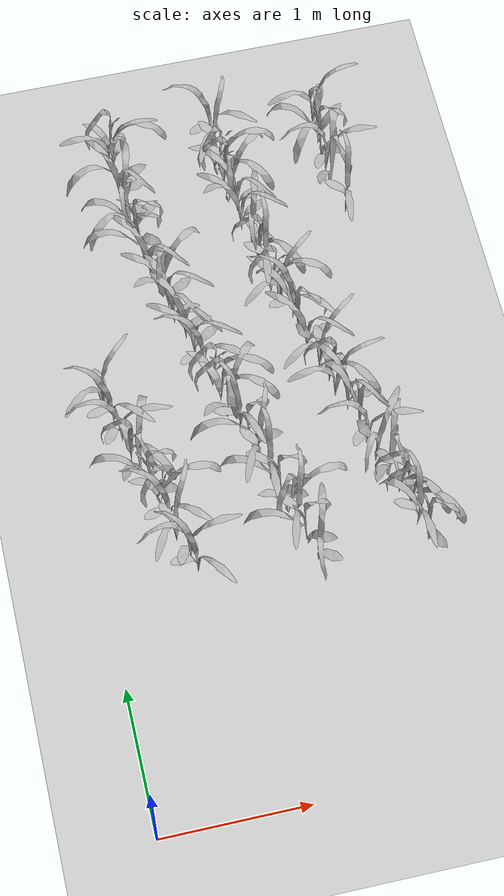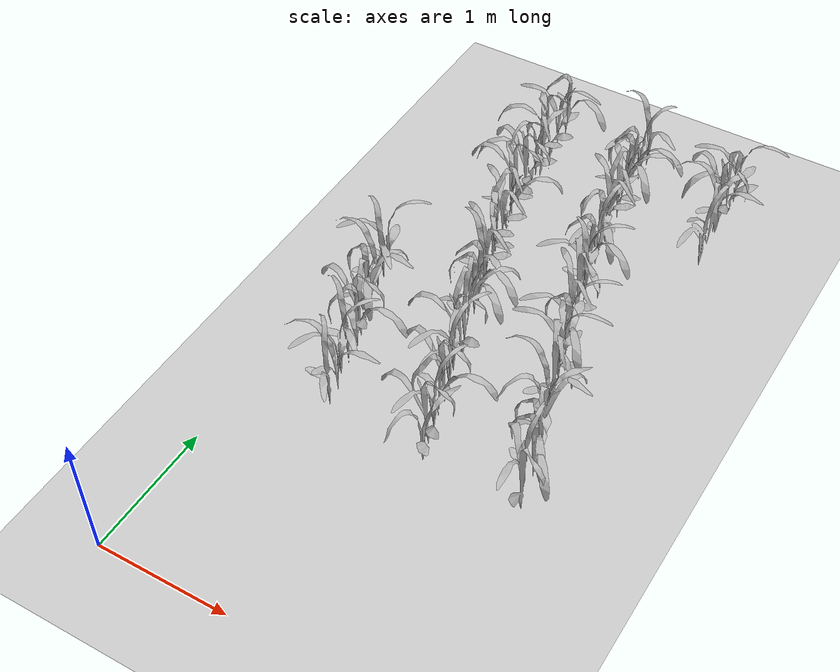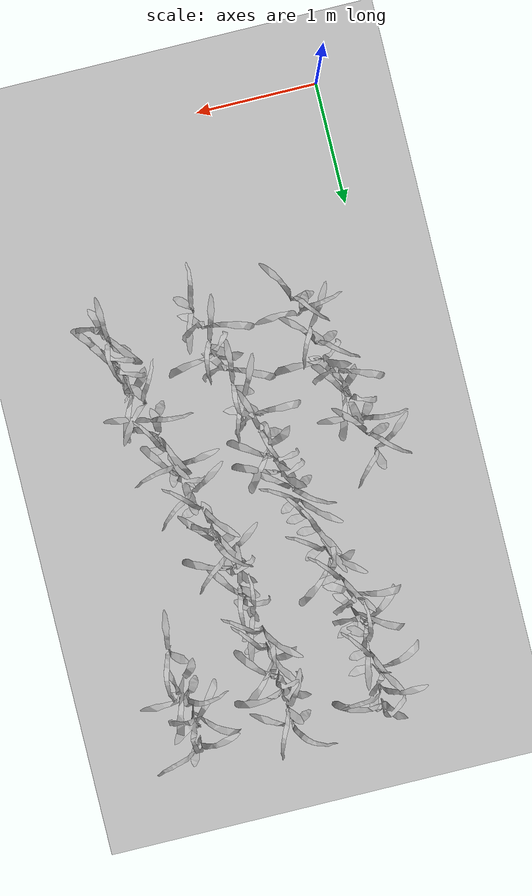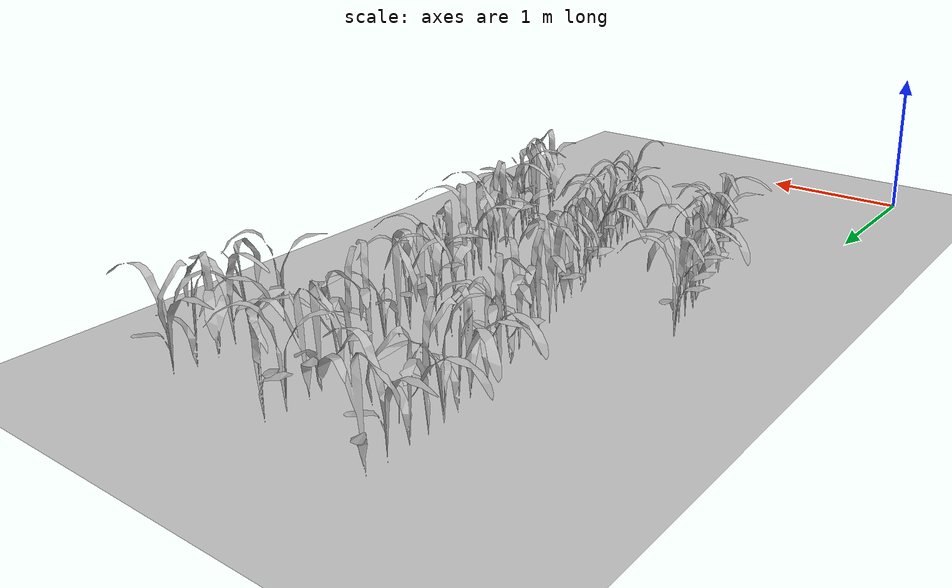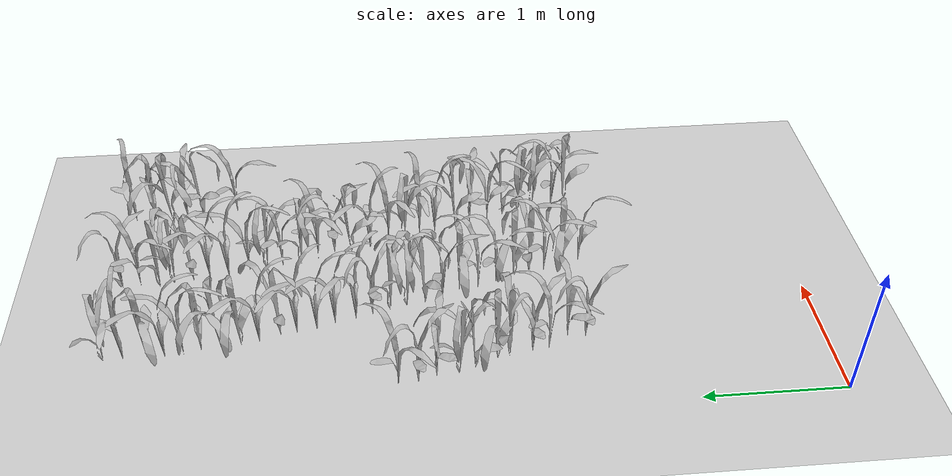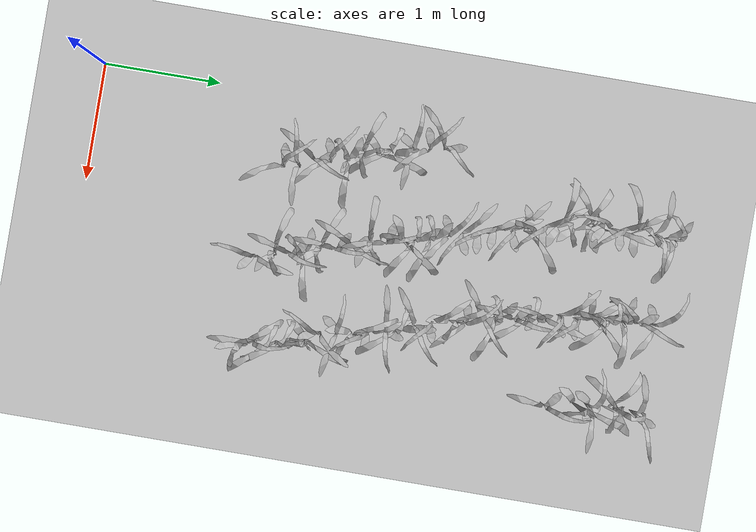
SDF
<sdf version="1.7">
 <world name="default">
  <model name="maize_02_0451">
   <pose>0.620495 1.67013 -1e-06 -8.9e-05 6e-06 1.20373</pose>
   <link name="maize_02_link">
    <inertial>
     <pose>0 0 0.01 0 -0 0</pose>
     <mass>0.3</mass>
     <inertia>
      <ixx>0.00334167</ixx>
      <ixy>0</ixy>
      <ixz>0</ixz>
      <iyy>0.00334167</iyy>
      <iyz>0</iyz>
      <izz>1.66667e-05</izz>
     </inertia>
     <pose>0 0 0.1 0 -0 0</pose>
    </inertial>
    <visual name="visual">
     <geometry>
      <mesh><uri>model://maize_02/meshes/maize_02.dae</uri><scale>0.683166 0.683166 0.683166</scale></mesh>
     </geometry>
    </visual>
   </link>
   <static>0</static>
  </model>
  <model name="maize_02_0452">
   <pose>0.599011 1.80228 -0 5e-06 2.8e-05 2.25262</pose>
   <link name="maize_02_link">
    <inertial>
     <pose>0 0 0.01 0 -0 0</pose>
     <mass>0.3</mass>
     <inertia>
      <ixx>0.00334167</ixx>
      <ixy>0</ixy>
      <ixz>0</ixz>
      <iyy>0.00334167</iyy>
      <iyz>0</iyz>
      <izz>1.66667e-05</izz>
     </inertia>
     <pose>0 0 0.1 0 -0 0</pose>
    </inertial>
    <visual name="visual">
     <geometry>
      <mesh><uri>model://maize_02/meshes/maize_02.dae</uri><scale>0.683166 0.683166 0.683166</scale></mesh>
     </geometry>
    </visual>
   </link>
   <static>0</static>
  </model>
  <model name="maize_02_0453">
   <pose>0.530968 1.9393 -0 2.8e-05 -5e-06 0.083219</pose>
   <link name="maize_02_link">
    <inertial>
     <pose>0 0 0.01 0 -0 0</pose>
     <mass>0.3</mass>
     <inertia>
      <ixx>0.00334167</ixx>
      <ixy>0</ixy>
      <ixz>0</ixz>
      <iyy>0.00334167</iyy>
      <iyz>0</iyz>
      <izz>1.66667e-05</izz>
     </inertia>
     <pose>0 0 0.1 0 -0 0</pose>
    </inertial>
    <visual name="visual">
     <geometry>
      <mesh><uri>model://maize_02/meshes/maize_02.dae</uri><scale>0.683166 0.683166 0.683166</scale></mesh>
     </geometry>
    </visual>
   </link>
   <static>0</static>
  </model>
  <model name="maize_02_0454">
   <pose>0.514812 2.0549 -0 6e-06 -4.8e-05 1.43302</pose>
   <link name="maize_02_link">
    <inertial>
     <pose>0 0 0.01 0 -0 0</pose>
     <mass>0.3</mass>
     <inertia>
      <ixx>0.00334167</ixx>
      <ixy>0</ixy>
      <ixz>0</ixz>
      <iyy>0.00334167</iyy>
      <iyz>0</iyz>
      <izz>1.66667e-05</izz>
     </inertia>
     <pose>0 0 0.1 0 -0 0</pose>
    </inertial>
    <visual name="visual">
     <geometry>
      <mesh><uri>model://maize_02/meshes/maize_02.dae</uri><scale>0.683166 0.683166 0.683166</scale></mesh>
     </geometry>
    </visual>
   </link>
   <static>0</static>
  </model>
  <model name="maize_01_0455">
   <pose>0.481697 2.21434 -0 -2.8e-05 -5e-06 0.814512</pose>
   <link name="maize_01_link">
    <inertial>
     <pose>0 0 0.01 0 -0 0</pose>
     <mass>0.3</mass>
     <inertia>
      <ixx>0.00334167</ixx>
      <ixy>0</ixy>
      <ixz>0</ixz>
      <iyy>0.00334167</iyy>
      <iyz>0</iyz>
      <izz>1.66667e-05</izz>
     </inertia>
     <pose>0 0 0.1 0 -0 0</pose>
    </inertial>
    <visual name="visual">
     <geometry>
      <mesh><uri>model://maize_01/meshes/maize_01.dae</uri><scale>0.683166 0.683166 0.683166</scale></mesh>
     </geometry>
    </visual>
   </link>
   <static>0</static>
  </model>
  <model name="maize_01_0456">
   <pose>0.457472 2.30804 1e-06 -3e-06 0.000156 -2.69508</pose>
   <link name="maize_01_link">
    <inertial>
     <pose>0 0 0.01 0 -0 0</pose>
     <mass>0.3</mass>
     <inertia>
      <ixx>0.00334167</ixx>
      <ixy>0</ixy>
      <ixz>0</ixz>
      <iyy>0.00334167</iyy>
      <iyz>0</iyz>
      <izz>1.66667e-05</izz>
     </inertia>
     <pose>0 0 0.1 0 -0 0</pose>
    </inertial>
    <visual name="visual">
     <geometry>
      <mesh><uri>model://maize_01/meshes/maize_01.dae</uri><scale>0.683166 0.683166 0.683166</scale></mesh>
     </geometry>
    </visual>
   </link>
   <static>0</static>
  </model>
  <model name="maize_01_0457">
   <pose>0.396834 2.46275 -1e-06 -6e-06 -8.9e-05 2.08866</pose>
   <link name="maize_01_link">
    <inertial>
     <pose>0 0 0.01 0 -0 0</pose>
     <mass>0.3</mass>
     <inertia>
      <ixx>0.00334167</ixx>
      <ixy>0</ixy>
      <ixz>0</ixz>
      <iyy>0.00334167</iyy>
      <iyz>0</iyz>
      <izz>1.66667e-05</izz>
     </inertia>
     <pose>0 0 0.1 0 -0 0</pose>
    </inertial>
    <visual name="visual">
     <geometry>
      <mesh><uri>model://maize_01/meshes/maize_01.dae</uri><scale>0.683166 0.683166 0.683166</scale></mesh>
     </geometry>
    </visual>
   </link>
   <static>0</static>
  </model>
  <model name="maize_01_0458">
   <pose>0.350859 2.57263 1e-06 -0.000156 -3e-06 -0.164295</pose>
   <link name="maize_01_link">
    <inertial>
     <pose>0 0 0.01 0 -0 0</pose>
     <mass>0.3</mass>
     <inertia>
      <ixx>0.00334167</ixx>
      <ixy>0</ixy>
      <ixz>0</ixz>
      <iyy>0.00334167</iyy>
      <iyz>0</iyz>
      <izz>1.66667e-05</izz>
     </inertia>
     <pose>0 0 0.1 0 -0 0</pose>
    </inertial>
    <visual name="visual">
     <geometry>
      <mesh><uri>model://maize_01/meshes/maize_01.dae</uri><scale>0.683166 0.683166 0.683166</scale></mesh>
     </geometry>
    </visual>
   </link>
   <static>0</static>
  </model>
  <model name="maize_02_0459">
   <pose>0.322986 2.72789 -0 -2.8e-05 5e-06 2.05555</pose>
   <link name="maize_02_link">
    <inertial>
     <pose>0 0 0.01 0 -0 0</pose>
     <mass>0.3</mass>
     <inertia>
      <ixx>0.00334167</ixx>
      <ixy>0</ixy>
      <ixz>0</ixz>
      <iyy>0.00334167</iyy>
      <iyz>0</iyz>
      <izz>1.66667e-05</izz>
     </inertia>
     <pose>0 0 0.1 0 -0 0</pose>
    </inertial>
    <visual name="visual">
     <geometry>
      <mesh><uri>model://maize_02/meshes/maize_02.dae</uri><scale>0.683166 0.683166 0.683166</scale></mesh>
     </geometry>
    </visual>
   </link>
   <static>0</static>
  </model>
  <model name="maize_02_0460">
   <pose>0.290835 2.85347 -1e-06 8.3e-05 6e-06 1.38598</pose>
   <link name="maize_02_link">
    <inertial>
     <pose>0 0 0.01 0 -0 0</pose>
     <mass>0.3</mass>
     <inertia>
      <ixx>0.00334167</ixx>
      <ixy>0</ixy>
      <ixz>0</ixz>
      <iyy>0.00334167</iyy>
      <iyz>0</iyz>
      <izz>1.66667e-05</izz>
     </inertia>
     <pose>0 0 0.1 0 -0 0</pose>
    </inertial>
    <visual name="visual">
     <geometry>
      <mesh><uri>model://maize_02/meshes/maize_02.dae</uri><scale>0.683166 0.683166 0.683166</scale></mesh>
     </geometry>
    </visual>
   </link>
   <static>0</static>
  </model>
  <model name="maize_02_0461">
   <pose>0.243371 2.98995 1e-06 -0.000156 -3e-06 -0.250146</pose>
   <link name="maize_02_link">
    <inertial>
     <pose>0 0 0.01 0 -0 0</pose>
     <mass>0.3</mass>
     <inertia>
      <ixx>0.00334167</ixx>
      <ixy>0</ixy>
      <ixz>0</ixz>
      <iyy>0.00334167</iyy>
      <iyz>0</iyz>
      <izz>1.66667e-05</izz>
     </inertia>
     <pose>0 0 0.1 0 -0 0</pose>
    </inertial>
    <visual name="visual">
     <geometry>
      <mesh><uri>model://maize_02/meshes/maize_02.dae</uri><scale>0.683166 0.683166 0.683166</scale></mesh>
     </geometry>
    </visual>
   </link>
   <static>0</static>
  </model>
  <model name="maize_02_0526">
   <pose>1.41445 1.58787 -0 2.8e-05 -5e-06 -2.77338</pose>
   <link name="maize_02_link">
    <inertial>
     <pose>0 0 0.01 0 -0 0</pose>
     <mass>0.3</mass>
     <inertia>
      <ixx>0.00334167</ixx>
      <ixy>0</ixy>
      <ixz>0</ixz>
      <iyy>0.00334167</iyy>
      <iyz>0</iyz>
      <izz>1.66667e-05</izz>
     </inertia>
     <pose>0 0 0.1 0 -0 0</pose>
    </inertial>
    <visual name="visual">
     <geometry>
      <mesh><uri>model://maize_02/meshes/maize_02.dae</uri><scale>0.683166 0.683166 0.683166</scale></mesh>
     </geometry>
    </visual>
   </link>
   <static>0</static>
  </model>
  <model name="maize_01_0527">
   <pose>1.37013 1.72844 -0 2.8e-05 -5e-06 -2.59882</pose>
   <link name="maize_01_link">
    <inertial>
     <pose>0 0 0.01 0 -0 0</pose>
     <mass>0.3</mass>
     <inertia>
      <ixx>0.00334167</ixx>
      <ixy>0</ixy>
      <ixz>0</ixz>
      <iyy>0.00334167</iyy>
      <iyz>0</iyz>
      <izz>1.66667e-05</izz>
     </inertia>
     <pose>0 0 0.1 0 -0 0</pose>
    </inertial>
    <visual name="visual">
     <geometry>
      <mesh><uri>model://maize_01/meshes/maize_01.dae</uri><scale>0.683166 0.683166 0.683166</scale></mesh>
     </geometry>
    </visual>
   </link>
   <static>0</static>
  </model>
  <model name="maize_02_0528">
   <pose>1.3337 1.85726 -0 5e-06 -2.8e-05 0.335687</pose>
   <link name="maize_02_link">
    <inertial>
     <pose>0 0 0.01 0 -0 0</pose>
     <mass>0.3</mass>
     <inertia>
      <ixx>0.00334167</ixx>
      <ixy>0</ixy>
      <ixz>0</ixz>
      <iyy>0.00334167</iyy>
      <iyz>0</iyz>
      <izz>1.66667e-05</izz>
     </inertia>
     <pose>0 0 0.1 0 -0 0</pose>
    </inertial>
    <visual name="visual">
     <geometry>
      <mesh><uri>model://maize_02/meshes/maize_02.dae</uri><scale>0.683166 0.683166 0.683166</scale></mesh>
     </geometry>
    </visual>
   </link>
   <static>0</static>
  </model>
  <model name="maize_01_0529">
   <pose>1.30102 1.96787 1e-06 3e-06 -0.000156 0.990591</pose>
   <link name="maize_01_link">
    <inertial>
     <pose>0 0 0.01 0 -0 0</pose>
     <mass>0.3</mass>
     <inertia>
      <ixx>0.00334167</ixx>
      <ixy>0</ixy>
      <ixz>0</ixz>
      <iyy>0.00334167</iyy>
      <iyz>0</iyz>
      <izz>1.66667e-05</izz>
     </inertia>
     <pose>0 0 0.1 0 -0 0</pose>
    </inertial>
    <visual name="visual">
     <geometry>
      <mesh><uri>model://maize_01/meshes/maize_01.dae</uri><scale>0.683166 0.683166 0.683166</scale></mesh>
     </geometry>
    </visual>
   </link>
   <static>0</static>
  </model>
  <model name="maize_01_0530">
   <pose>1.28025 2.08954 -0.000245 1.2e-05 -1.4e-05 -2.76819</pose>
   <link name="maize_01_link">
    <inertial>
     <pose>0 0 0.01 0 -0 0</pose>
     <mass>0.3</mass>
     <inertia>
      <ixx>0.00334167</ixx>
      <ixy>0</ixy>
      <ixz>0</ixz>
      <iyy>0.00334167</iyy>
      <iyz>0</iyz>
      <izz>1.66667e-05</izz>
     </inertia>
     <pose>0 0 0.1 0 -0 0</pose>
    </inertial>
    <visual name="visual">
     <geometry>
      <mesh><uri>model://maize_01/meshes/maize_01.dae</uri><scale>0.683166 0.683166 0.683166</scale></mesh>
     </geometry>
    </visual>
   </link>
   <static>0</static>
  </model>
  <model name="maize_02_0531">
   <pose>1.23136 2.22304 1e-06 -3e-06 0.000156 0.561517</pose>
   <link name="maize_02_link">
    <inertial>
     <pose>0 0 0.01 0 -0 0</pose>
     <mass>0.3</mass>
     <inertia>
      <ixx>0.00334167</ixx>
      <ixy>0</ixy>
      <ixz>0</ixz>
      <iyy>0.00334167</iyy>
      <iyz>0</iyz>
      <izz>1.66667e-05</izz>
     </inertia>
     <pose>0 0 0.1 0 -0 0</pose>
    </inertial>
    <visual name="visual">
     <geometry>
      <mesh><uri>model://maize_02/meshes/maize_02.dae</uri><scale>0.683166 0.683166 0.683166</scale></mesh>
     </geometry>
    </visual>
   </link>
   <static>0</static>
  </model>
  <model name="maize_02_0532">
   <pose>1.18179 2.36155 1e-06 -0.000156 3e-06 0.184235</pose>
   <link name="maize_02_link">
    <inertial>
     <pose>0 0 0.01 0 -0 0</pose>
     <mass>0.3</mass>
     <inertia>
      <ixx>0.00334167</ixx>
      <ixy>0</ixy>
      <ixz>0</ixz>
      <iyy>0.00334167</iyy>
      <iyz>0</iyz>
      <izz>1.66667e-05</izz>
     </inertia>
     <pose>0 0 0.1 0 -0 0</pose>
    </inertial>
    <visual name="visual">
     <geometry>
      <mesh><uri>model://maize_02/meshes/maize_02.dae</uri><scale>0.683166 0.683166 0.683166</scale></mesh>
     </geometry>
    </visual>
   </link>
   <static>0</static>
  </model>
  <model name="maize_01_0533">
   <pose>1.16922 2.50072 1e-06 -3e-06 -0.000156 -2.34055</pose>
   <link name="maize_01_link">
    <inertial>
     <pose>0 0 0.01 0 -0 0</pose>
     <mass>0.3</mass>
     <inertia>
      <ixx>0.00334167</ixx>
      <ixy>0</ixy>
      <ixz>0</ixz>
      <iyy>0.00334167</iyy>
      <iyz>0</iyz>
      <izz>1.66667e-05</izz>
     </inertia>
     <pose>0 0 0.1 0 -0 0</pose>
    </inertial>
    <visual name="visual">
     <geometry>
      <mesh><uri>model://maize_01/meshes/maize_01.dae</uri><scale>0.683166 0.683166 0.683166</scale></mesh>
     </geometry>
    </visual>
   </link>
   <static>0</static>
  </model>
  <model name="maize_02_0534">
   <pose>1.11497 2.62585 -0.000245 1.2e-05 -1.4e-05 0.898897</pose>
   <link name="maize_02_link">
    <inertial>
     <pose>0 0 0.01 0 -0 0</pose>
     <mass>0.3</mass>
     <inertia>
      <ixx>0.00334167</ixx>
      <ixy>0</ixy>
      <ixz>0</ixz>
      <iyy>0.00334167</iyy>
      <iyz>0</iyz>
      <izz>1.66667e-05</izz>
     </inertia>
     <pose>0 0 0.1 0 -0 0</pose>
    </inertial>
    <visual name="visual">
     <geometry>
      <mesh><uri>model://maize_02/meshes/maize_02.dae</uri><scale>0.683166 0.683166 0.683166</scale></mesh>
     </geometry>
    </visual>
   </link>
   <static>0</static>
  </model>
  <model name="maize_01_0535">
   <pose>1.05888 2.75544 -0 2.8e-05 5e-06 1.72201</pose>
   <link name="maize_01_link">
    <inertial>
     <pose>0 0 0.01 0 -0 0</pose>
     <mass>0.3</mass>
     <inertia>
      <ixx>0.00334167</ixx>
      <ixy>0</ixy>
      <ixz>0</ixz>
      <iyy>0.00334167</iyy>
      <iyz>0</iyz>
      <izz>1.66667e-05</izz>
     </inertia>
     <pose>0 0 0.1 0 -0 0</pose>
    </inertial>
    <visual name="visual">
     <geometry>
      <mesh><uri>model://maize_01/meshes/maize_01.dae</uri><scale>0.683166 0.683166 0.683166</scale></mesh>
     </geometry>
    </visual>
   </link>
   <static>0</static>
  </model>
  <model name="maize_01_0536">
   <pose>1.03912 2.88571 -0 -5e-06 -2.8e-05 0.213603</pose>
   <link name="maize_01_link">
    <inertial>
     <pose>0 0 0.01 0 -0 0</pose>
     <mass>0.3</mass>
     <inertia>
      <ixx>0.00334167</ixx>
      <ixy>0</ixy>
      <ixz>0</ixz>
      <iyy>0.00334167</iyy>
      <iyz>0</iyz>
      <izz>1.66667e-05</izz>
     </inertia>
     <pose>0 0 0.1 0 -0 0</pose>
    </inertial>
    <visual name="visual">
     <geometry>
      <mesh><uri>model://maize_01/meshes/maize_01.dae</uri><scale>0.683166 0.683166 0.683166</scale></mesh>
     </geometry>
    </visual>
   </link>
   <static>0</static>
  </model>
  <model name="maize_01_0537">
   <pose>1.00855 3.00555 -0 -2.8e-05 5e-06 0.419957</pose>
   <link name="maize_01_link">
    <inertial>
     <pose>0 0 0.01 0 -0 0</pose>
     <mass>0.3</mass>
     <inertia>
      <ixx>0.00334167</ixx>
      <ixy>0</ixy>
      <ixz>0</ixz>
      <iyy>0.00334167</iyy>
      <iyz>0</iyz>
      <izz>1.66667e-05</izz>
     </inertia>
     <pose>0 0 0.1 0 -0 0</pose>
    </inertial>
    <visual name="visual">
     <geometry>
      <mesh><uri>model://maize_01/meshes/maize_01.dae</uri><scale>0.683166 0.683166 0.683166</scale></mesh>
     </geometry>
    </visual>
   </link>
   <static>0</static>
  </model>
  <model name="maize_02_0538">
   <pose>0.975003 3.13428 -0 2.8e-05 5e-06 1.55221</pose>
   <link name="maize_02_link">
    <inertial>
     <pose>0 0 0.01 0 -0 0</pose>
     <mass>0.3</mass>
     <inertia>
      <ixx>0.00334167</ixx>
      <ixy>0</ixy>
      <ixz>0</ixz>
      <iyy>0.00334167</iyy>
      <iyz>0</iyz>
      <izz>1.66667e-05</izz>
     </inertia>
     <pose>0 0 0.1 0 -0 0</pose>
    </inertial>
    <visual name="visual">
     <geometry>
      <mesh><uri>model://maize_02/meshes/maize_02.dae</uri><scale>0.683166 0.683166 0.683166</scale></mesh>
     </geometry>
    </visual>
   </link>
   <static>0</static>
  </model>
  <model name="maize_02_0539">
   <pose>0.937389 3.25457 -0 2.8e-05 5e-06 -1.62069</pose>
   <link name="maize_02_link">
    <inertial>
     <pose>0 0 0.01 0 -0 0</pose>
     <mass>0.3</mass>
     <inertia>
      <ixx>0.00334167</ixx>
      <ixy>0</ixy>
      <ixz>0</ixz>
      <iyy>0.00334167</iyy>
      <iyz>0</iyz>
      <izz>1.66667e-05</izz>
     </inertia>
     <pose>0 0 0.1 0 -0 0</pose>
    </inertial>
    <visual name="visual">
     <geometry>
      <mesh><uri>model://maize_02/meshes/maize_02.dae</uri><scale>0.683166 0.683166 0.683166</scale></mesh>
     </geometry>
    </visual>
   </link>
   <static>0</static>
  </model>
  <model name="maize_02_0540">
   <pose>0.906055 3.40129 -0 2.8e-05 5e-06 -2.01069</pose>
   <link name="maize_02_link">
    <inertial>
     <pose>0 0 0.01 0 -0 0</pose>
     <mass>0.3</mass>
     <inertia>
      <ixx>0.00334167</ixx>
      <ixy>0</ixy>
      <ixz>0</ixz>
      <iyy>0.00334167</iyy>
      <iyz>0</iyz>
      <izz>1.66667e-05</izz>
     </inertia>
     <pose>0 0 0.1 0 -0 0</pose>
    </inertial>
    <visual name="visual">
     <geometry>
      <mesh><uri>model://maize_02/meshes/maize_02.dae</uri><scale>0.683166 0.683166 0.683166</scale></mesh>
     </geometry>
    </visual>
   </link>
   <static>0</static>
  </model>
  <model name="maize_02_0541">
   <pose>0.851662 3.52946 -1e-06 -8.9e-05 6e-06 -2.15316</pose>
   <link name="maize_02_link">
    <inertial>
     <pose>0 0 0.01 0 -0 0</pose>
     <mass>0.3</mass>
     <inertia>
      <ixx>0.00334167</ixx>
      <ixy>0</ixy>
      <ixz>0</ixz>
      <iyy>0.00334167</iyy>
      <iyz>0</iyz>
      <izz>1.66667e-05</izz>
     </inertia>
     <pose>0 0 0.1 0 -0 0</pose>
    </inertial>
    <visual name="visual">
     <geometry>
      <mesh><uri>model://maize_02/meshes/maize_02.dae</uri><scale>0.683166 0.683166 0.683166</scale></mesh>
     </geometry>
    </visual>
   </link>
   <static>0</static>
  </model>
  <model name="maize_02_0542">
   <pose>0.837711 3.66889 -0 -5e-06 -2.8e-05 -1.66189</pose>
   <link name="maize_02_link">
    <inertial>
     <pose>0 0 0.01 0 -0 0</pose>
     <mass>0.3</mass>
     <inertia>
      <ixx>0.00334167</ixx>
      <ixy>0</ixy>
      <ixz>0</ixz>
      <iyy>0.00334167</iyy>
      <iyz>0</iyz>
      <izz>1.66667e-05</izz>
     </inertia>
     <pose>0 0 0.1 0 -0 0</pose>
    </inertial>
    <visual name="visual">
     <geometry>
      <mesh><uri>model://maize_02/meshes/maize_02.dae</uri><scale>0.683166 0.683166 0.683166</scale></mesh>
     </geometry>
    </visual>
   </link>
   <static>0</static>
  </model>
  <model name="maize_01_0543">
   <pose>0.813668 3.77719 -0 2.8e-05 -5e-06 1.46215</pose>
   <link name="maize_01_link">
    <inertial>
     <pose>0 0 0.01 0 -0 0</pose>
     <mass>0.3</mass>
     <inertia>
      <ixx>0.00334167</ixx>
      <ixy>0</ixy>
      <ixz>0</ixz>
      <iyy>0.00334167</iyy>
      <iyz>0</iyz>
      <izz>1.66667e-05</izz>
     </inertia>
     <pose>0 0 0.1 0 -0 0</pose>
    </inertial>
    <visual name="visual">
     <geometry>
      <mesh><uri>model://maize_01/meshes/maize_01.dae</uri><scale>0.683166 0.683166 0.683166</scale></mesh>
     </geometry>
    </visual>
   </link>
   <static>0</static>
  </model>
  <model name="maize_02_0544">
   <pose>0.766625 3.92496 -0 -2.8e-05 -5e-06 -1.91083</pose>
   <link name="maize_02_link">
    <inertial>
     <pose>0 0 0.01 0 -0 0</pose>
     <mass>0.3</mass>
     <inertia>
      <ixx>0.00334167</ixx>
      <ixy>0</ixy>
      <ixz>0</ixz>
      <iyy>0.00334167</iyy>
      <iyz>0</iyz>
      <izz>1.66667e-05</izz>
     </inertia>
     <pose>0 0 0.1 0 -0 0</pose>
    </inertial>
    <visual name="visual">
     <geometry>
      <mesh><uri>model://maize_02/meshes/maize_02.dae</uri><scale>0.683166 0.683166 0.683166</scale></mesh>
     </geometry>
    </visual>
   </link>
   <static>0</static>
  </model>
  <model name="maize_01_0545">
   <pose>0.74669 4.05116 -0.000245 1.4e-05 -1.2e-05 -2.44333</pose>
   <link name="maize_01_link">
    <inertial>
     <pose>0 0 0.01 0 -0 0</pose>
     <mass>0.3</mass>
     <inertia>
      <ixx>0.00334167</ixx>
      <ixy>0</ixy>
      <ixz>0</ixz>
      <iyy>0.00334167</iyy>
      <iyz>0</iyz>
      <izz>1.66667e-05</izz>
     </inertia>
     <pose>0 0 0.1 0 -0 0</pose>
    </inertial>
    <visual name="visual">
     <geometry>
      <mesh><uri>model://maize_01/meshes/maize_01.dae</uri><scale>0.683166 0.683166 0.683166</scale></mesh>
     </geometry>
    </visual>
   </link>
   <static>0</static>
  </model>
  <model name="maize_01_0546">
   <pose>0.74466 4.19064 1e-06 -3e-06 -0.000156 -2.86392</pose>
   <link name="maize_01_link">
    <inertial>
     <pose>0 0 0.01 0 -0 0</pose>
     <mass>0.3</mass>
     <inertia>
      <ixx>0.00334167</ixx>
      <ixy>0</ixy>
      <ixz>0</ixz>
      <iyy>0.00334167</iyy>
      <iyz>0</iyz>
      <izz>1.66667e-05</izz>
     </inertia>
     <pose>0 0 0.1 0 -0 0</pose>
    </inertial>
    <visual name="visual">
     <geometry>
      <mesh><uri>model://maize_01/meshes/maize_01.dae</uri><scale>0.683166 0.683166 0.683166</scale></mesh>
     </geometry>
    </visual>
   </link>
   <static>0</static>
  </model>
  <model name="maize_01_0547">
   <pose>0.708379 4.32017 -0.000245 1.4e-05 -1.2e-05 -1.6954</pose>
   <link name="maize_01_link">
    <inertial>
     <pose>0 0 0.01 0 -0 0</pose>
     <mass>0.3</mass>
     <inertia>
      <ixx>0.00334167</ixx>
      <ixy>0</ixy>
      <ixz>0</ixz>
      <iyy>0.00334167</iyy>
      <iyz>0</iyz>
      <izz>1.66667e-05</izz>
     </inertia>
     <pose>0 0 0.1 0 -0 0</pose>
    </inertial>
    <visual name="visual">
     <geometry>
      <mesh><uri>model://maize_01/meshes/maize_01.dae</uri><scale>0.683166 0.683166 0.683166</scale></mesh>
     </geometry>
    </visual>
   </link>
   <static>0</static>
  </model>
  <model name="maize_02_0548">
   <pose>0.696822 4.43876 -0 -5e-06 2.8e-05 -2.74593</pose>
   <link name="maize_02_link">
    <inertial>
     <pose>0 0 0.01 0 -0 0</pose>
     <mass>0.3</mass>
     <inertia>
      <ixx>0.00334167</ixx>
      <ixy>0</ixy>
      <ixz>0</ixz>
      <iyy>0.00334167</iyy>
      <iyz>0</iyz>
      <izz>1.66667e-05</izz>
     </inertia>
     <pose>0 0 0.1 0 -0 0</pose>
    </inertial>
    <visual name="visual">
     <geometry>
      <mesh><uri>model://maize_02/meshes/maize_02.dae</uri><scale>0.683166 0.683166 0.683166</scale></mesh>
     </geometry>
    </visual>
   </link>
   <static>0</static>
  </model>
  <model name="maize_02_0549">
   <pose>0.682448 4.5648 -0 -5e-06 -2.8e-05 -2.00219</pose>
   <link name="maize_02_link">
    <inertial>
     <pose>0 0 0.01 0 -0 0</pose>
     <mass>0.3</mass>
     <inertia>
      <ixx>0.00334167</ixx>
      <ixy>0</ixy>
      <ixz>0</ixz>
      <iyy>0.00334167</iyy>
      <iyz>0</iyz>
      <izz>1.66667e-05</izz>
     </inertia>
     <pose>0 0 0.1 0 -0 0</pose>
    </inertial>
    <visual name="visual">
     <geometry>
      <mesh><uri>model://maize_02/meshes/maize_02.dae</uri><scale>0.683166 0.683166 0.683166</scale></mesh>
     </geometry>
    </visual>
   </link>
   <static>0</static>
  </model>
  <model name="maize_01_0550">
   <pose>0.686179 4.68751 -0 2.8e-05 5e-06 -1.98636</pose>
   <link name="maize_01_link">
    <inertial>
     <pose>0 0 0.01 0 -0 0</pose>
     <mass>0.3</mass>
     <inertia>
      <ixx>0.00334167</ixx>
      <ixy>0</ixy>
      <ixz>0</ixz>
      <iyy>0.00334167</iyy>
      <iyz>0</iyz>
      <izz>1.66667e-05</izz>
     </inertia>
     <pose>0 0 0.1 0 -0 0</pose>
    </inertial>
    <visual name="visual">
     <geometry>
      <mesh><uri>model://maize_01/meshes/maize_01.dae</uri><scale>0.683166 0.683166 0.683166</scale></mesh>
     </geometry>
    </visual>
   </link>
   <static>0</static>
  </model>
  <model name="maize_02_0551">
   <pose>0.673958 4.84382 1e-06 3e-06 0.000156 -0.998748</pose>
   <link name="maize_02_link">
    <inertial>
     <pose>0 0 0.01 0 -0 0</pose>
     <mass>0.3</mass>
     <inertia>
      <ixx>0.00334167</ixx>
      <ixy>0</ixy>
      <ixz>0</ixz>
      <iyy>0.00334167</iyy>
      <iyz>0</iyz>
      <izz>1.66667e-05</izz>
     </inertia>
     <pose>0 0 0.1 0 -0 0</pose>
    </inertial>
    <visual name="visual">
     <geometry>
      <mesh><uri>model://maize_02/meshes/maize_02.dae</uri><scale>0.683166 0.683166 0.683166</scale></mesh>
     </geometry>
    </visual>
   </link>
   <static>0</static>
  </model>
  <model name="maize_01_0552">
   <pose>0.675138 4.97639 -1e-06 6e-06 8.3e-05 0.476281</pose>
   <link name="maize_01_link">
    <inertial>
     <pose>0 0 0.01 0 -0 0</pose>
     <mass>0.3</mass>
     <inertia>
      <ixx>0.00334167</ixx>
      <ixy>0</ixy>
      <ixz>0</ixz>
      <iyy>0.00334167</iyy>
      <iyz>0</iyz>
      <izz>1.66667e-05</izz>
     </inertia>
     <pose>0 0 0.1 0 -0 0</pose>
    </inertial>
    <visual name="visual">
     <geometry>
      <mesh><uri>model://maize_01/meshes/maize_01.dae</uri><scale>0.683166 0.683166 0.683166</scale></mesh>
     </geometry>
    </visual>
   </link>
   <static>0</static>
  </model>
  <model name="maize_01_0603">
   <pose>2.15894 1.58079 -0 2.8e-05 -5e-06 3.03549</pose>
   <link name="maize_01_link">
    <inertial>
     <pose>0 0 0.01 0 -0 0</pose>
     <mass>0.3</mass>
     <inertia>
      <ixx>0.00334167</ixx>
      <ixy>0</ixy>
      <ixz>0</ixz>
      <iyy>0.00334167</iyy>
      <iyz>0</iyz>
      <izz>1.66667e-05</izz>
     </inertia>
     <pose>0 0 0.1 0 -0 0</pose>
    </inertial>
    <visual name="visual">
     <geometry>
      <mesh><uri>model://maize_01/meshes/maize_01.dae</uri><scale>0.683166 0.683166 0.683166</scale></mesh>
     </geometry>
    </visual>
   </link>
   <static>0</static>
  </model>
  <model name="maize_02_0604">
   <pose>2.1064 1.68377 -0.000245 1.2e-05 1.4e-05 0.638633</pose>
   <link name="maize_02_link">
    <inertial>
     <pose>0 0 0.01 0 -0 0</pose>
     <mass>0.3</mass>
     <inertia>
      <ixx>0.00334167</ixx>
      <ixy>0</ixy>
      <ixz>0</ixz>
      <iyy>0.00334167</iyy>
      <iyz>0</iyz>
      <izz>1.66667e-05</izz>
     </inertia>
     <pose>0 0 0.1 0 -0 0</pose>
    </inertial>
    <visual name="visual">
     <geometry>
      <mesh><uri>model://maize_02/meshes/maize_02.dae</uri><scale>0.683166 0.683166 0.683166</scale></mesh>
     </geometry>
    </visual>
   </link>
   <static>0</static>
  </model>
  <model name="maize_01_0605">
   <pose>2.10026 1.83705 -0 -2.8e-05 5e-06 -0.105719</pose>
   <link name="maize_01_link">
    <inertial>
     <pose>0 0 0.01 0 -0 0</pose>
     <mass>0.3</mass>
     <inertia>
      <ixx>0.00334167</ixx>
      <ixy>0</ixy>
      <ixz>0</ixz>
      <iyy>0.00334167</iyy>
      <iyz>0</iyz>
      <izz>1.66667e-05</izz>
     </inertia>
     <pose>0 0 0.1 0 -0 0</pose>
    </inertial>
    <visual name="visual">
     <geometry>
      <mesh><uri>model://maize_01/meshes/maize_01.dae</uri><scale>0.683166 0.683166 0.683166</scale></mesh>
     </geometry>
    </visual>
   </link>
   <static>0</static>
  </model>
  <model name="maize_01_0606">
   <pose>2.05536 1.95197 -0.000245 -1.2e-05 -1.4e-05 -0.210694</pose>
   <link name="maize_01_link">
    <inertial>
     <pose>0 0 0.01 0 -0 0</pose>
     <mass>0.3</mass>
     <inertia>
      <ixx>0.00334167</ixx>
      <ixy>0</ixy>
      <ixz>0</ixz>
      <iyy>0.00334167</iyy>
      <iyz>0</iyz>
      <izz>1.66667e-05</izz>
     </inertia>
     <pose>0 0 0.1 0 -0 0</pose>
    </inertial>
    <visual name="visual">
     <geometry>
      <mesh><uri>model://maize_01/meshes/maize_01.dae</uri><scale>0.683166 0.683166 0.683166</scale></mesh>
     </geometry>
    </visual>
   </link>
   <static>0</static>
  </model>
  <model name="maize_01_0607">
   <pose>2.01924 2.0854 -0.000245 -1.4e-05 -1.2e-05 2.05334</pose>
   <link name="maize_01_link">
    <inertial>
     <pose>0 0 0.01 0 -0 0</pose>
     <mass>0.3</mass>
     <inertia>
      <ixx>0.00334167</ixx>
      <ixy>0</ixy>
      <ixz>0</ixz>
      <iyy>0.00334167</iyy>
      <iyz>0</iyz>
      <izz>1.66667e-05</izz>
     </inertia>
     <pose>0 0 0.1 0 -0 0</pose>
    </inertial>
    <visual name="visual">
     <geometry>
      <mesh><uri>model://maize_01/meshes/maize_01.dae</uri><scale>0.683166 0.683166 0.683166</scale></mesh>
     </geometry>
    </visual>
   </link>
   <static>0</static>
  </model>
  <model name="maize_02_0608">
   <pose>1.96014 2.21029 1e-06 -0.000116 -2e-06 3.14148</pose>
   <link name="maize_02_link">
    <inertial>
     <pose>0 0 0.01 0 -0 0</pose>
     <mass>0.3</mass>
     <inertia>
      <ixx>0.00334167</ixx>
      <ixy>0</ixy>
      <ixz>0</ixz>
      <iyy>0.00334167</iyy>
      <iyz>0</iyz>
      <izz>1.66667e-05</izz>
     </inertia>
     <pose>0 0 0.1 0 -0 0</pose>
    </inertial>
    <visual name="visual">
     <geometry>
      <mesh><uri>model://maize_02/meshes/maize_02.dae</uri><scale>0.683166 0.683166 0.683166</scale></mesh>
     </geometry>
    </visual>
   </link>
   <static>0</static>
  </model>
  <model name="maize_02_0609">
   <pose>1.92997 2.34902 -1e-06 6e-06 -8.6e-05 2.00339</pose>
   <link name="maize_02_link">
    <inertial>
     <pose>0 0 0.01 0 -0 0</pose>
     <mass>0.3</mass>
     <inertia>
      <ixx>0.00334167</ixx>
      <ixy>0</ixy>
      <ixz>0</ixz>
      <iyy>0.00334167</iyy>
      <iyz>0</iyz>
      <izz>1.66667e-05</izz>
     </inertia>
     <pose>0 0 0.1 0 -0 0</pose>
    </inertial>
    <visual name="visual">
     <geometry>
      <mesh><uri>model://maize_02/meshes/maize_02.dae</uri><scale>0.683166 0.683166 0.683166</scale></mesh>
     </geometry>
    </visual>
   </link>
   <static>0</static>
  </model>
  <model name="maize_01_0610">
   <pose>1.91163 2.46354 -0.000245 1.4e-05 1.2e-05 2.80196</pose>
   <link name="maize_01_link">
    <inertial>
     <pose>0 0 0.01 0 -0 0</pose>
     <mass>0.3</mass>
     <inertia>
      <ixx>0.00334167</ixx>
      <ixy>0</ixy>
      <ixz>0</ixz>
      <iyy>0.00334167</iyy>
      <iyz>0</iyz>
      <izz>1.66667e-05</izz>
     </inertia>
     <pose>0 0 0.1 0 -0 0</pose>
    </inertial>
    <visual name="visual">
     <geometry>
      <mesh><uri>model://maize_01/meshes/maize_01.dae</uri><scale>0.683166 0.683166 0.683166</scale></mesh>
     </geometry>
    </visual>
   </link>
   <static>0</static>
  </model>
  <model name="maize_02_0611">
   <pose>1.86691 2.62642 -0.000245 -1.4e-05 -1.2e-05 -2.06646</pose>
   <link name="maize_02_link">
    <inertial>
     <pose>0 0 0.01 0 -0 0</pose>
     <mass>0.3</mass>
     <inertia>
      <ixx>0.00334167</ixx>
      <ixy>0</ixy>
      <ixz>0</ixz>
      <iyy>0.00334167</iyy>
      <iyz>0</iyz>
      <izz>1.66667e-05</izz>
     </inertia>
     <pose>0 0 0.1 0 -0 0</pose>
    </inertial>
    <visual name="visual">
     <geometry>
      <mesh><uri>model://maize_02/meshes/maize_02.dae</uri><scale>0.683166 0.683166 0.683166</scale></mesh>
     </geometry>
    </visual>
   </link>
   <static>0</static>
  </model>
  <model name="maize_02_0612">
   <pose>1.80882 2.74861 -0 5e-06 2.8e-05 -0.809488</pose>
   <link name="maize_02_link">
    <inertial>
     <pose>0 0 0.01 0 -0 0</pose>
     <mass>0.3</mass>
     <inertia>
      <ixx>0.00334167</ixx>
      <ixy>0</ixy>
      <ixz>0</ixz>
      <iyy>0.00334167</iyy>
      <iyz>0</iyz>
      <izz>1.66667e-05</izz>
     </inertia>
     <pose>0 0 0.1 0 -0 0</pose>
    </inertial>
    <visual name="visual">
     <geometry>
      <mesh><uri>model://maize_02/meshes/maize_02.dae</uri><scale>0.683166 0.683166 0.683166</scale></mesh>
     </geometry>
    </visual>
   </link>
   <static>0</static>
  </model>
  <model name="maize_01_0613">
   <pose>1.7934 2.86344 -1e-06 8.6e-05 -6e-06 -0.120267</pose>
   <link name="maize_01_link">
    <inertial>
     <pose>0 0 0.01 0 -0 0</pose>
     <mass>0.3</mass>
     <inertia>
      <ixx>0.00334167</ixx>
      <ixy>0</ixy>
      <ixz>0</ixz>
      <iyy>0.00334167</iyy>
      <iyz>0</iyz>
      <izz>1.66667e-05</izz>
     </inertia>
     <pose>0 0 0.1 0 -0 0</pose>
    </inertial>
    <visual name="visual">
     <geometry>
      <mesh><uri>model://maize_01/meshes/maize_01.dae</uri><scale>0.683166 0.683166 0.683166</scale></mesh>
     </geometry>
    </visual>
   </link>
   <static>0</static>
  </model>
  <model name="maize_02_0614">
   <pose>1.75479 2.98806 -0 -5e-06 2.8e-05 -0.386019</pose>
   <link name="maize_02_link">
    <inertial>
     <pose>0 0 0.01 0 -0 0</pose>
     <mass>0.3</mass>
     <inertia>
      <ixx>0.00334167</ixx>
      <ixy>0</ixy>
      <ixz>0</ixz>
      <iyy>0.00334167</iyy>
      <iyz>0</iyz>
      <izz>1.66667e-05</izz>
     </inertia>
     <pose>0 0 0.1 0 -0 0</pose>
    </inertial>
    <visual name="visual">
     <geometry>
      <mesh><uri>model://maize_02/meshes/maize_02.dae</uri><scale>0.683166 0.683166 0.683166</scale></mesh>
     </geometry>
    </visual>
   </link>
   <static>0</static>
  </model>
  <model name="maize_02_0615">
   <pose>1.6995 3.12857 -1e-06 8.3e-05 -6e-06 -1.79712</pose>
   <link name="maize_02_link">
    <inertial>
     <pose>0 0 0.01 0 -0 0</pose>
     <mass>0.3</mass>
     <inertia>
      <ixx>0.00334167</ixx>
      <ixy>0</ixy>
      <ixz>0</ixz>
      <iyy>0.00334167</iyy>
      <iyz>0</iyz>
      <izz>1.66667e-05</izz>
     </inertia>
     <pose>0 0 0.1 0 -0 0</pose>
    </inertial>
    <visual name="visual">
     <geometry>
      <mesh><uri>model://maize_02/meshes/maize_02.dae</uri><scale>0.683166 0.683166 0.683166</scale></mesh>
     </geometry>
    </visual>
   </link>
   <static>0</static>
  </model>
  <model name="maize_01_0616">
   <pose>1.67769 3.27401 -1e-06 6e-06 8.3e-05 2.88317</pose>
   <link name="maize_01_link">
    <inertial>
     <pose>0 0 0.01 0 -0 0</pose>
     <mass>0.3</mass>
     <inertia>
      <ixx>0.00334167</ixx>
      <ixy>0</ixy>
      <ixz>0</ixz>
      <iyy>0.00334167</iyy>
      <iyz>0</iyz>
      <izz>1.66667e-05</izz>
     </inertia>
     <pose>0 0 0.1 0 -0 0</pose>
    </inertial>
    <visual name="visual">
     <geometry>
      <mesh><uri>model://maize_01/meshes/maize_01.dae</uri><scale>0.683166 0.683166 0.683166</scale></mesh>
     </geometry>
    </visual>
   </link>
   <static>0</static>
  </model>
  <model name="maize_02_0617">
   <pose>1.66433 3.39602 -0 5e-06 2.8e-05 1.32237</pose>
   <link name="maize_02_link">
    <inertial>
     <pose>0 0 0.01 0 -0 0</pose>
     <mass>0.3</mass>
     <inertia>
      <ixx>0.00334167</ixx>
      <ixy>0</ixy>
      <ixz>0</ixz>
      <iyy>0.00334167</iyy>
      <iyz>0</iyz>
      <izz>1.66667e-05</izz>
     </inertia>
     <pose>0 0 0.1 0 -0 0</pose>
    </inertial>
    <visual name="visual">
     <geometry>
      <mesh><uri>model://maize_02/meshes/maize_02.dae</uri><scale>0.683166 0.683166 0.683166</scale></mesh>
     </geometry>
    </visual>
   </link>
   <static>0</static>
  </model>
  <model name="maize_02_0618">
   <pose>1.59751 3.52003 1e-06 0.000156 3e-06 -0.350807</pose>
   <link name="maize_02_link">
    <inertial>
     <pose>0 0 0.01 0 -0 0</pose>
     <mass>0.3</mass>
     <inertia>
      <ixx>0.00334167</ixx>
      <ixy>0</ixy>
      <ixz>0</ixz>
      <iyy>0.00334167</iyy>
      <iyz>0</iyz>
      <izz>1.66667e-05</izz>
     </inertia>
     <pose>0 0 0.1 0 -0 0</pose>
    </inertial>
    <visual name="visual">
     <geometry>
      <mesh><uri>model://maize_02/meshes/maize_02.dae</uri><scale>0.683166 0.683166 0.683166</scale></mesh>
     </geometry>
    </visual>
   </link>
   <static>0</static>
  </model>
  <model name="maize_01_0619">
   <pose>1.56545 3.64248 -0 4.8e-05 6e-06 0.402074</pose>
   <link name="maize_01_link">
    <inertial>
     <pose>0 0 0.01 0 -0 0</pose>
     <mass>0.3</mass>
     <inertia>
      <ixx>0.00334167</ixx>
      <ixy>0</ixy>
      <ixz>0</ixz>
      <iyy>0.00334167</iyy>
      <iyz>0</iyz>
      <izz>1.66667e-05</izz>
     </inertia>
     <pose>0 0 0.1 0 -0 0</pose>
    </inertial>
    <visual name="visual">
     <geometry>
      <mesh><uri>model://maize_01/meshes/maize_01.dae</uri><scale>0.683166 0.683166 0.683166</scale></mesh>
     </geometry>
    </visual>
   </link>
   <static>0</static>
  </model>
  <model name="maize_02_0620">
   <pose>1.55774 3.78344 -0 2.8e-05 -5e-06 0.452994</pose>
   <link name="maize_02_link">
    <inertial>
     <pose>0 0 0.01 0 -0 0</pose>
     <mass>0.3</mass>
     <inertia>
      <ixx>0.00334167</ixx>
      <ixy>0</ixy>
      <ixz>0</ixz>
      <iyy>0.00334167</iyy>
      <iyz>0</iyz>
      <izz>1.66667e-05</izz>
     </inertia>
     <pose>0 0 0.1 0 -0 0</pose>
    </inertial>
    <visual name="visual">
     <geometry>
      <mesh><uri>model://maize_02/meshes/maize_02.dae</uri><scale>0.683166 0.683166 0.683166</scale></mesh>
     </geometry>
    </visual>
   </link>
   <static>0</static>
  </model>
  <model name="maize_01_0621">
   <pose>1.52691 3.89597 -0 5e-06 -2.8e-05 -0.142685</pose>
   <link name="maize_01_link">
    <inertial>
     <pose>0 0 0.01 0 -0 0</pose>
     <mass>0.3</mass>
     <inertia>
      <ixx>0.00334167</ixx>
      <ixy>0</ixy>
      <ixz>0</ixz>
      <iyy>0.00334167</iyy>
      <iyz>0</iyz>
      <izz>1.66667e-05</izz>
     </inertia>
     <pose>0 0 0.1 0 -0 0</pose>
    </inertial>
    <visual name="visual">
     <geometry>
      <mesh><uri>model://maize_01/meshes/maize_01.dae</uri><scale>0.683166 0.683166 0.683166</scale></mesh>
     </geometry>
    </visual>
   </link>
   <static>0</static>
  </model>
  <model name="maize_02_0622">
   <pose>1.5181 4.02498 1e-06 0.000156 -3e-06 -2.77767</pose>
   <link name="maize_02_link">
    <inertial>
     <pose>0 0 0.01 0 -0 0</pose>
     <mass>0.3</mass>
     <inertia>
      <ixx>0.00334167</ixx>
      <ixy>0</ixy>
      <ixz>0</ixz>
      <iyy>0.00334167</iyy>
      <iyz>0</iyz>
      <izz>1.66667e-05</izz>
     </inertia>
     <pose>0 0 0.1 0 -0 0</pose>
    </inertial>
    <visual name="visual">
     <geometry>
      <mesh><uri>model://maize_02/meshes/maize_02.dae</uri><scale>0.683166 0.683166 0.683166</scale></mesh>
     </geometry>
    </visual>
   </link>
   <static>0</static>
  </model>
  <model name="maize_02_0623">
   <pose>1.47207 4.17714 -0.000245 -1.2e-05 -1.4e-05 -1.69212</pose>
   <link name="maize_02_link">
    <inertial>
     <pose>0 0 0.01 0 -0 0</pose>
     <mass>0.3</mass>
     <inertia>
      <ixx>0.00334167</ixx>
      <ixy>0</ixy>
      <ixz>0</ixz>
      <iyy>0.00334167</iyy>
      <iyz>0</iyz>
      <izz>1.66667e-05</izz>
     </inertia>
     <pose>0 0 0.1 0 -0 0</pose>
    </inertial>
    <visual name="visual">
     <geometry>
      <mesh><uri>model://maize_02/meshes/maize_02.dae</uri><scale>0.683166 0.683166 0.683166</scale></mesh>
     </geometry>
    </visual>
   </link>
   <static>0</static>
  </model>
  <model name="maize_02_0624">
   <pose>1.47425 4.3163 -0.000245 -1.2e-05 -1.4e-05 -1.94885</pose>
   <link name="maize_02_link">
    <inertial>
     <pose>0 0 0.01 0 -0 0</pose>
     <mass>0.3</mass>
     <inertia>
      <ixx>0.00334167</ixx>
      <ixy>0</ixy>
      <ixz>0</ixz>
      <iyy>0.00334167</iyy>
      <iyz>0</iyz>
      <izz>1.66667e-05</izz>
     </inertia>
     <pose>0 0 0.1 0 -0 0</pose>
    </inertial>
    <visual name="visual">
     <geometry>
      <mesh><uri>model://maize_02/meshes/maize_02.dae</uri><scale>0.683166 0.683166 0.683166</scale></mesh>
     </geometry>
    </visual>
   </link>
   <static>0</static>
  </model>
  <model name="maize_01_0625">
   <pose>1.4383 4.42761 -0 5e-06 -2.8e-05 1.5428</pose>
   <link name="maize_01_link">
    <inertial>
     <pose>0 0 0.01 0 -0 0</pose>
     <mass>0.3</mass>
     <inertia>
      <ixx>0.00334167</ixx>
      <ixy>0</ixy>
      <ixz>0</ixz>
      <iyy>0.00334167</iyy>
      <iyz>0</iyz>
      <izz>1.66667e-05</izz>
     </inertia>
     <pose>0 0 0.1 0 -0 0</pose>
    </inertial>
    <visual name="visual">
     <geometry>
      <mesh><uri>model://maize_01/meshes/maize_01.dae</uri><scale>0.683166 0.683166 0.683166</scale></mesh>
     </geometry>
    </visual>
   </link>
   <static>0</static>
  </model>
  <model name="maize_01_0626">
   <pose>1.42872 4.56803 -0 4.8e-05 6e-06 -0.009777</pose>
   <link name="maize_01_link">
    <inertial>
     <pose>0 0 0.01 0 -0 0</pose>
     <mass>0.3</mass>
     <inertia>
      <ixx>0.00334167</ixx>
      <ixy>0</ixy>
      <ixz>0</ixz>
      <iyy>0.00334167</iyy>
      <iyz>0</iyz>
      <izz>1.66667e-05</izz>
     </inertia>
     <pose>0 0 0.1 0 -0 0</pose>
    </inertial>
    <visual name="visual">
     <geometry>
      <mesh><uri>model://maize_01/meshes/maize_01.dae</uri><scale>0.683166 0.683166 0.683166</scale></mesh>
     </geometry>
    </visual>
   </link>
   <static>0</static>
  </model>
  <model name="maize_01_0627">
   <pose>1.40432 4.6691 -0.000245 -1.4e-05 1.2e-05 0.788866</pose>
   <link name="maize_01_link">
    <inertial>
     <pose>0 0 0.01 0 -0 0</pose>
     <mass>0.3</mass>
     <inertia>
      <ixx>0.00334167</ixx>
      <ixy>0</ixy>
      <ixz>0</ixz>
      <iyy>0.00334167</iyy>
      <iyz>0</iyz>
      <izz>1.66667e-05</izz>
     </inertia>
     <pose>0 0 0.1 0 -0 0</pose>
    </inertial>
    <visual name="visual">
     <geometry>
      <mesh><uri>model://maize_01/meshes/maize_01.dae</uri><scale>0.683166 0.683166 0.683166</scale></mesh>
     </geometry>
    </visual>
   </link>
   <static>0</static>
  </model>
  <model name="maize_02_0628">
   <pose>1.41638 4.80915 -0.000245 1.2e-05 1.4e-05 0.13125</pose>
   <link name="maize_02_link">
    <inertial>
     <pose>0 0 0.01 0 -0 0</pose>
     <mass>0.3</mass>
     <inertia>
      <ixx>0.00334167</ixx>
      <ixy>0</ixy>
      <ixz>0</ixz>
      <iyy>0.00334167</iyy>
      <iyz>0</iyz>
      <izz>1.66667e-05</izz>
     </inertia>
     <pose>0 0 0.1 0 -0 0</pose>
    </inertial>
    <visual name="visual">
     <geometry>
      <mesh><uri>model://maize_02/meshes/maize_02.dae</uri><scale>0.683166 0.683166 0.683166</scale></mesh>
     </geometry>
    </visual>
   </link>
   <static>0</static>
  </model>
  <model name="maize_02_0629">
   <pose>1.41854 4.94158 -0 -5e-06 -2.8e-05 1.60299</pose>
   <link name="maize_02_link">
    <inertial>
     <pose>0 0 0.01 0 -0 0</pose>
     <mass>0.3</mass>
     <inertia>
      <ixx>0.00334167</ixx>
      <ixy>0</ixy>
      <ixz>0</ixz>
      <iyy>0.00334167</iyy>
      <iyz>0</iyz>
      <izz>1.66667e-05</izz>
     </inertia>
     <pose>0 0 0.1 0 -0 0</pose>
    </inertial>
    <visual name="visual">
     <geometry>
      <mesh><uri>model://maize_02/meshes/maize_02.dae</uri><scale>0.683166 0.683166 0.683166</scale></mesh>
     </geometry>
    </visual>
   </link>
   <static>0</static>
  </model>
  <model name="maize_02_0700">
   <pose>2.22772 4.15467 -1e-06 -7.9e-05 6e-06 0.447106</pose>
   <link name="maize_02_link">
    <inertial>
     <pose>0 0 0.01 0 -0 0</pose>
     <mass>0.3</mass>
     <inertia>
      <ixx>0.00334167</ixx>
      <ixy>0</ixy>
      <ixz>0</ixz>
      <iyy>0.00334167</iyy>
      <iyz>0</iyz>
      <izz>1.66667e-05</izz>
     </inertia>
     <pose>0 0 0.1 0 -0 0</pose>
    </inertial>
    <visual name="visual">
     <geometry>
      <mesh><uri>model://maize_02/meshes/maize_02.dae</uri><scale>0.683166 0.683166 0.683166</scale></mesh>
     </geometry>
    </visual>
   </link>
   <static>0</static>
  </model>
  <model name="maize_01_0702">
   <pose>2.18469 4.41406 1e-06 -0.000156 -3e-06 2.12411</pose>
   <link name="maize_01_link">
    <inertial>
     <pose>0 0 0.01 0 -0 0</pose>
     <mass>0.3</mass>
     <inertia>
      <ixx>0.00334167</ixx>
      <ixy>0</ixy>
      <ixz>0</ixz>
      <iyy>0.00334167</iyy>
      <iyz>0</iyz>
      <izz>1.66667e-05</izz>
     </inertia>
     <pose>0 0 0.1 0 -0 0</pose>
    </inertial>
    <visual name="visual">
     <geometry>
      <mesh><uri>model://maize_01/meshes/maize_01.dae</uri><scale>0.683166 0.683166 0.683166</scale></mesh>
     </geometry>
    </visual>
   </link>
   <static>0</static>
  </model>
  <model name="maize_02_0703">
   <pose>2.17577 4.53408 -0.000245 1.2e-05 1.4e-05 2.14664</pose>
   <link name="maize_02_link">
    <inertial>
     <pose>0 0 0.01 0 -0 0</pose>
     <mass>0.3</mass>
     <inertia>
      <ixx>0.00334167</ixx>
      <ixy>0</ixy>
      <ixz>0</ixz>
      <iyy>0.00334167</iyy>
      <iyz>0</iyz>
      <izz>1.66667e-05</izz>
     </inertia>
     <pose>0 0 0.1 0 -0 0</pose>
    </inertial>
    <visual name="visual">
     <geometry>
      <mesh><uri>model://maize_02/meshes/maize_02.dae</uri><scale>0.683166 0.683166 0.683166</scale></mesh>
     </geometry>
    </visual>
   </link>
   <static>0</static>
  </model>
  <model name="maize_01_0704">
   <pose>2.17061 4.65583 -0 5e-06 -2.8e-05 -2.95194</pose>
   <link name="maize_01_link">
    <inertial>
     <pose>0 0 0.01 0 -0 0</pose>
     <mass>0.3</mass>
     <inertia>
      <ixx>0.00334167</ixx>
      <ixy>0</ixy>
      <ixz>0</ixz>
      <iyy>0.00334167</iyy>
      <iyz>0</iyz>
      <izz>1.66667e-05</izz>
     </inertia>
     <pose>0 0 0.1 0 -0 0</pose>
    </inertial>
    <visual name="visual">
     <geometry>
      <mesh><uri>model://maize_01/meshes/maize_01.dae</uri><scale>0.683166 0.683166 0.683166</scale></mesh>
     </geometry>
    </visual>
   </link>
   <static>0</static>
  </model>
  <model name="maize_01_0705">
   <pose>2.17699 4.78399 -0.000245 -1.2e-05 1.4e-05 -1.43738</pose>
   <link name="maize_01_link">
    <inertial>
     <pose>0 0 0.01 0 -0 0</pose>
     <mass>0.3</mass>
     <inertia>
      <ixx>0.00334167</ixx>
      <ixy>0</ixy>
      <ixz>0</ixz>
      <iyy>0.00334167</iyy>
      <iyz>0</iyz>
      <izz>1.66667e-05</izz>
     </inertia>
     <pose>0 0 0.1 0 -0 0</pose>
    </inertial>
    <visual name="visual">
     <geometry>
      <mesh><uri>model://maize_01/meshes/maize_01.dae</uri><scale>0.683166 0.683166 0.683166</scale></mesh>
     </geometry>
    </visual>
   </link>
   <static>0</static>
  </model>
  <model name="maize_02_0706">
   <pose>2.17342 4.93015 -0 -2.8e-05 5e-06 -0.791848</pose>
   <link name="maize_02_link">
    <inertial>
     <pose>0 0 0.01 0 -0 0</pose>
     <mass>0.3</mass>
     <inertia>
      <ixx>0.00334167</ixx>
      <ixy>0</ixy>
      <ixz>0</ixz>
      <iyy>0.00334167</iyy>
      <iyz>0</iyz>
      <izz>1.66667e-05</izz>
     </inertia>
     <pose>0 0 0.1 0 -0 0</pose>
    </inertial>
    <visual name="visual">
     <geometry>
      <mesh><uri>model://maize_02/meshes/maize_02.dae</uri><scale>0.683166 0.683166 0.683166</scale></mesh>
     </geometry>
    </visual>
   </link>
   <static>0</static>
  </model>
  <model name="ground_plane">
   <static>1</static>
   <link name="link">
    <collision name="collision">
     <geometry><plane><normal>0 0 1</normal><size>100 100</size></plane></geometry>
     <surface>
      <contact><collide_bitmask>65535</collide_bitmask></contact>
      <friction><ode><mu>100</mu><mu2>50</mu2></ode></friction>
     </surface>
    </collision>
    <visual name="visual">
     <cast_shadows>0</cast_shadows>
     <geometry><plane><normal>0 0 1</normal><size>100 100</size></plane></geometry>
     <material>
      <script><uri>file://media/materials/scripts/gazebo.material</uri><name>Gazebo/Grey</name></script>
     </material>
    </visual>
   </link>
   <pose>-13.7732 9.25996 0 0 -0 0</pose>
  </model>
 </world>
</sdf>
